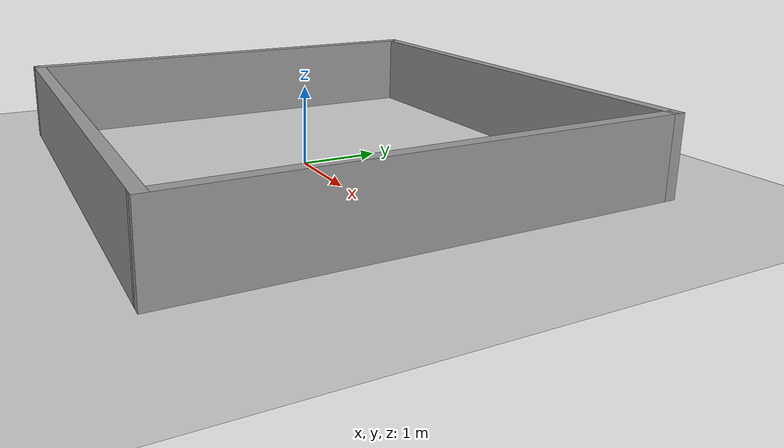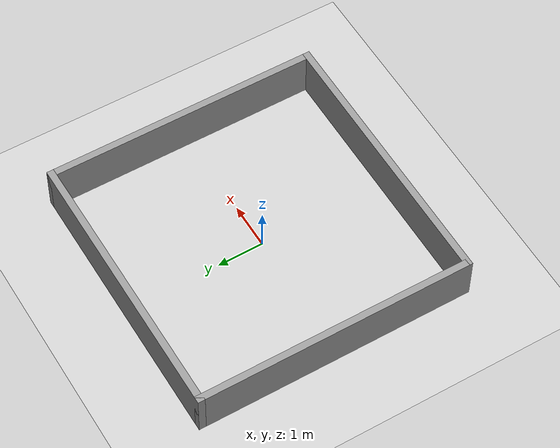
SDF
<sdf version="1.6">
   <world name="default">
      <include>
         <uri>model://ground_plane</uri>
      </include>
      <include>
         <uri>model://sun</uri>
      </include>

  <model name='Untitled'>
    <pose>0.015 0.125 0 0 -0 0</pose>
    <link name='Wall_0'>
      <collision name='Wall_0_Collision'>
        <geometry>
          <box>
            <size>6 0.15 1</size>
          </box>
        </geometry>
        <pose>0 0 0.5 0 -0 0</pose>
      </collision>
      <visual name='Wall_0_Visual'>
        <pose>0 0 0.5 0 -0 0</pose>
        <geometry>
          <box>
            <size>6 0.15 1</size>
          </box>
        </geometry>
        <material>
          <script>
            <uri>file://media/materials/scripts/gazebo.material</uri>
            <name>Gazebo/Grey</name>
          </script>
          <ambient>1 1 1 1</ambient>
        </material>
        <meta>
          <layer>0</layer>
        </meta>
      </visual>
      <pose>-2.925 0 0 0 -0 -1.5708</pose>
    </link>
    <link name='Wall_2'>
      <collision name='Wall_2_Collision'>
        <geometry>
          <box>
            <size>6 0.15 1</size>
          </box>
        </geometry>
        <pose>0 0 0.5 0 -0 0</pose>
      </collision>
      <visual name='Wall_2_Visual'>
        <pose>0 0 0.5 0 -0 0</pose>
        <geometry>
          <box>
            <size>6 0.15 1</size>
          </box>
        </geometry>
        <material>
          <script>
            <uri>file://media/materials/scripts/gazebo.material</uri>
            <name>Gazebo/Grey</name>
          </script>
          <ambient>1 1 1 1</ambient>
        </material>
        <meta>
          <layer>0</layer>
        </meta>
      </visual>
      <pose>0 -2.925 0 0 -0 0</pose>
    </link>
    <link name='Wall_3'>
      <collision name='Wall_3_Collision'>
        <geometry>
          <box>
            <size>6 0.15 1</size>
          </box>
        </geometry>
        <pose>0 0 0.5 0 -0 0</pose>
      </collision>
      <visual name='Wall_3_Visual'>
        <pose>0 0 0.5 0 -0 0</pose>
        <geometry>
          <box>
            <size>6 0.15 1</size>
          </box>
        </geometry>
        <material>
          <script>
            <uri>file://media/materials/scripts/gazebo.material</uri>
            <name>Gazebo/Grey</name>
          </script>
          <ambient>1 1 1 1</ambient>
        </material>
        <meta>
          <layer>0</layer>
        </meta>
      </visual>
      <pose>2.925 0 0 0 -0 1.5708</pose>
    </link>
    <link name='Wall_5'>
      <collision name='Wall_5_Collision'>
        <geometry>
          <box>
            <size>6 0.15 1</size>
          </box>
        </geometry>
        <pose>0 0 0.5 0 -0 0</pose>
      </collision>
      <visual name='Wall_5_Visual'>
        <pose>0 0 0.5 0 -0 0</pose>
        <geometry>
          <box>
            <size>6 0.15 1</size>
          </box>
        </geometry>
        <material>
          <script>
            <uri>file://media/materials/scripts/gazebo.material</uri>
            <name>Gazebo/Grey</name>
          </script>
          <ambient>1 1 1 1</ambient>
        </material>
        <meta>
          <layer>0</layer>
        </meta>
      </visual>
      <pose>0 2.925 0 0 -0 0</pose>
    </link>
    <static>1</static>
  </model>
   </world>
</sdf>
